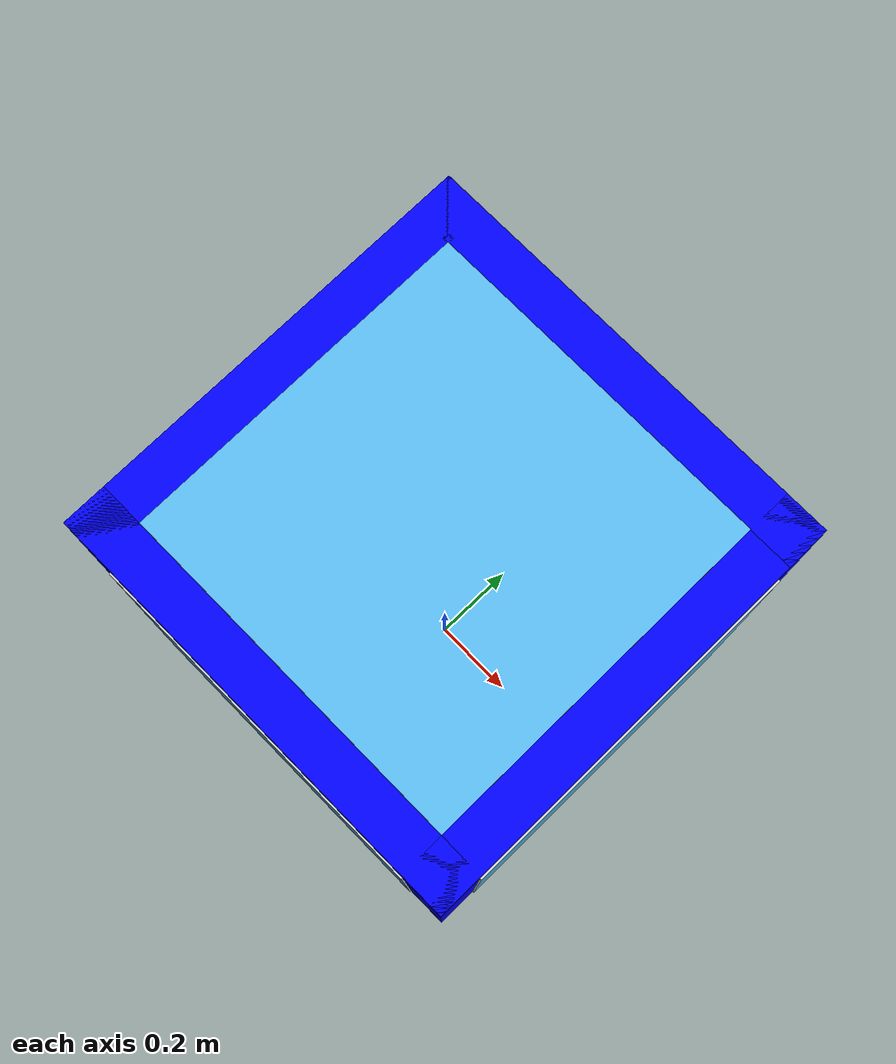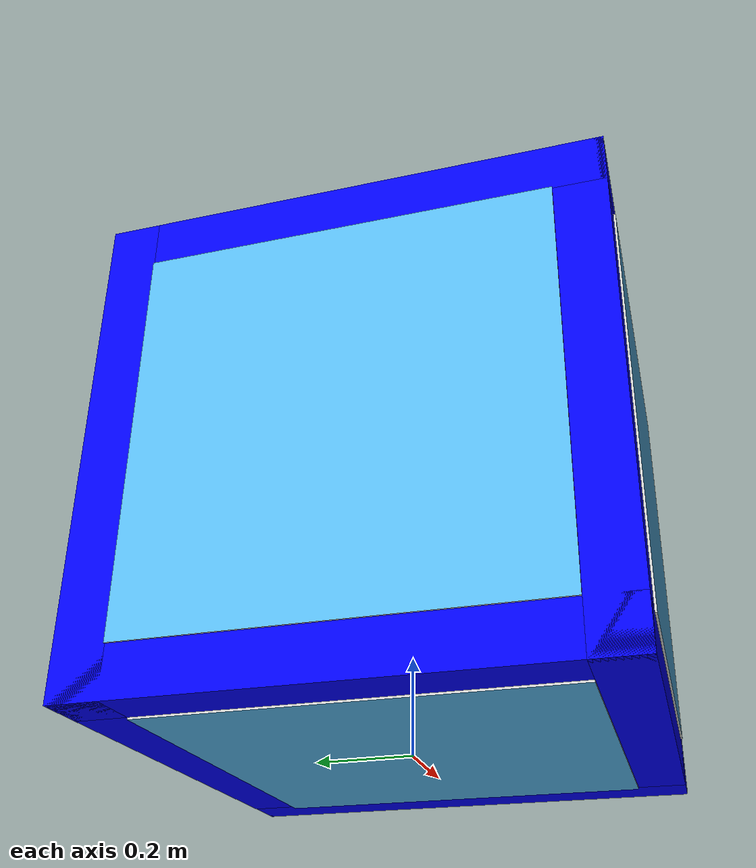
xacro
<?xml version="1.0"?>
<robot xmlns:xacro="http://www.ros.org/wiki/xacro" name="robot">

  <!-- This first link called "my world" is empty -->
  <link name="my world"></link>

  <!-- The base origin is offset from the world origin. -->
  <joint name="base_joint" type="fixed">
    <origin xyz="0 0 0" rpy="0 0 0"/>
    <parent link="my world"/>
    <child link="cube_frame"/>
  </joint>

  <!-- Define properties for cube dimensions -->
  <xacro:property name="cube_length" value="1.0"/>    <!-- Length of the cube -->
  <xacro:property name="cube_girth" value="0.1"/>     <!-- Thickness of the edges -->

  <!-- Center coordinates of the cube -->
  <xacro:property name="cube_x" value="0.0"/>
  <xacro:property name="cube_y" value="0.0"/>
  <xacro:property name="cube_z" value="${cube_length / 2}"/> <!-- Half the cube length -->

  <!-- Define properties for the disk dimensions -->
  <xacro:property name="disk_radius" value="0.3"/>        <!-- Radius of the disk -->
  <xacro:property name="disk_thickness" value="0.1"/>     <!-- Thickness (height) of the disk -->

  <!-- Defining colors -->
  <xacro:property name="red" value="1 0 0 1"/>
  <xacro:property name="yellow" value="1 0.5 0 1"/>
  <xacro:property name="green" value="0 1 0 1"/>

  <xacro:property name="mesh_filename_1" value="$(find aruco_cube)/meshes/face_1.dae"/>
  <xacro:property name="mesh_filename_2" value="$(find aruco_cube)/meshes/face_2.dae"/>
  <xacro:property name="mesh_filename_3" value="$(find aruco_cube)/meshes/face_3.dae"/>
  <xacro:property name="mesh_filename_4" value="$(find aruco_cube)/meshes/face_4.dae"/>
  <xacro:property name="mesh_filename_5" value="$(find aruco_cube)/meshes/face_5.dae"/>
  <xacro:property name="mesh_filename_6" value="$(find aruco_cube)/meshes/face_6.dae"/>
  <xacro:property name="mesh_scale" value="${(cube_length-2*cube_girth)/2}"/>

  <!-- Macro for defining a visual edge -->
  <xacro:macro name="visual_edge" params="edge x y z r p yaw">
    <visual name="${edge}">
      <origin xyz="${x} ${y} ${z}" rpy="${r} ${p} ${yaw}"/>
      <geometry>
        <box size="${cube_girth} ${cube_girth} ${cube_length}"/>
      </geometry>
      <material name="blue">
        <color rgba="0 0 1 1"/> <!-- Blue color with RGBA values -->
      </material>
      <!-- Material and other visual properties can be added here -->
    </visual>
  </xacro:macro>

    <!-- Macro for a visual element with a mesh and origin parameters -->
  <xacro:macro name="visual_mesh" params="name mesh_filename mesh_scale xyz rpy">
    <visual name="${name}">
      <origin xyz="${xyz}" rpy="${rpy}" />
      <geometry>
        <mesh filename="${mesh_filename}" scale="${mesh_scale}"/>
      </geometry>
    </visual>
  </xacro:macro>

  <!-- Macro for defining a disk link-->
  <xacro:macro name="disk_link_macro" params="name xyz rpy radius thickness rgba">
    <link name="${name}">
      <!-- Visual element for the disk -->
      <visual name="disk">
        <origin xyz="${xyz}" rpy="${rpy}"/>
        <geometry>
          <cylinder radius="${radius}" length="${thickness}"/>
        </geometry>
        <material name="color_${rgba}">
          <color rgba="${rgba}"/> <!-- Color with RGBA values -->
        </material>
      </visual>

      <!-- Collision properties for the disk -->
      <collision name="disk_collision">
        <origin xyz="${xyz}" rpy="${rpy}"/>
        <geometry>
          <cylinder radius="${radius}" length="${thickness}"/>
        </geometry>
      </collision>

      <!-- Inertial properties for the disk -->
      <inertial>
        <origin xyz="${xyz}"/>
        <mass value="1.0"/>
        <inertia ixx="0.1" ixy="0.0" ixz="0.0" iyy="0.1" iyz="0.0" izz="0.1"/>
      </inertial>
    </link>
  </xacro:macro>

  <!-- Main robot model -->
  <link name="cube_frame">
    <!-- Visual element for the main cube -->
    <xacro:visual_edge edge="ZXY" x="${(cube_length - cube_girth) / 2}" y="${cube_y+(cube_length - cube_girth) / 2}" z="${cube_z}" r="0" p="0" yaw="0"/>
    <xacro:visual_edge edge="ZX_Y" x="${-(cube_length - cube_girth) / 2}" y="${cube_y+(cube_length - cube_girth) / 2}" z="${cube_z}" r="0" p="0" yaw="0"/>
    <xacro:visual_edge edge="ZXY_" x="${(cube_length - cube_girth) / 2}" y="${cube_y-(cube_length - cube_girth) / 2}" z="${cube_z}" r="0" p="0" yaw="0"/>
    <xacro:visual_edge edge="ZX_Y_" x="${-(cube_length - cube_girth) / 2}" y="${cube_y-(cube_length - cube_girth) / 2}" z="${cube_z}" r="0" p="0" yaw="0"/>

    <xacro:visual_edge edge="XYZ" y="${(cube_length - cube_girth) / 2}" z="${cube_z+(cube_length/2)-(cube_girth/2)}" x="${cube_x}" r="0" p="${pi/2}" yaw="0"/>
    <xacro:visual_edge edge="XY_Z" y="${-(cube_length - cube_girth) / 2}" z="${cube_z+(cube_length/2)-(cube_girth/2)}" x="${cube_x}" r="0" p="${pi/2}" yaw="0"/>
    <xacro:visual_edge edge="XYZ_" y="${(cube_length - cube_girth) / 2}" z="${cube_z-(cube_length/2)+(cube_girth/2)}" x="${cube_x}" r="0" p="${pi/2}" yaw="0"/>
    <xacro:visual_edge edge="XY_Z_" y="${-(cube_length - cube_girth) / 2}" z="${cube_z-(cube_length/2)+(cube_girth/2)}" x="${cube_x}" r="0" p="${pi/2}" yaw="0"/>

    <xacro:visual_edge edge="YZX" z="${cube_z+(cube_length/2)-(cube_girth/2)}" x="${cube_x+(cube_length - cube_girth) / 2}" y="${cube_y}" r="${pi/2}" p="0" yaw="0"/>
    <xacro:visual_edge edge="YZ_X" z="${cube_z-(cube_length/2)+(cube_girth/2)}" x="${cube_x+(cube_length - cube_girth) / 2}" y="${cube_y}" r="${pi/2}" p="0" yaw="0"/>
    <xacro:visual_edge edge="YZX_" z="${cube_z+(cube_length/2)-(cube_girth/2)}" x="${cube_x-(cube_length - cube_girth) / 2}" y="${cube_y}" r="${pi/2}" p="0" yaw="0"/>
    <xacro:visual_edge edge="YZ_X_" z="${cube_z-(cube_length/2)+(cube_girth/2)}" x="${cube_x-(cube_length - cube_girth) / 2}" y="${cube_y}" r="${pi/2}" p="0" yaw="0"/>

    <!-- Aruco Tags on each face -->
     <!-- Use the visual_mesh macro -->
  <xacro:visual_mesh
    name="X"
    mesh_filename="${mesh_filename_1}"
    mesh_scale="${mesh_scale} ${mesh_scale} ${mesh_scale}"
    xyz="${cube_x+cube_length/2} ${cube_y} ${cube_z}"
    rpy="0 ${pi/2} 0"/>
  <xacro:visual_mesh
    name="Y"
    mesh_filename="${mesh_filename_2}"
    mesh_scale="${mesh_scale} ${mesh_scale} ${mesh_scale}"
    xyz="${cube_x} ${cube_y+cube_length/2} ${cube_z}"
    rpy="-${pi/2} 0 0"/>
  <xacro:visual_mesh
    name="Z"
    mesh_filename="${mesh_filename_3}"
    mesh_scale="${mesh_scale} ${mesh_scale} ${mesh_scale}"
    xyz="${cube_x} ${cube_y} ${cube_z+cube_length/2}"
    rpy="0 0 0"/>
  <xacro:visual_mesh
    name="-X"
    mesh_filename="${mesh_filename_4}"
    mesh_scale="${mesh_scale} ${mesh_scale} ${mesh_scale}"
    xyz="${cube_x-cube_length/2} ${cube_y} ${cube_z}"
    rpy="0 -${pi/2} 0"/>
  <xacro:visual_mesh
    name="-Y"
    mesh_filename="${mesh_filename_5}"
    mesh_scale="${mesh_scale} ${mesh_scale} ${mesh_scale}"
    xyz="${cube_x} ${cube_y-cube_length/2} ${cube_z}"
    rpy="${pi/2} 0 0"/>
  <xacro:visual_mesh
    name="-Z"
    mesh_filename="${mesh_filename_6}"
    mesh_scale="${mesh_scale} ${mesh_scale} ${mesh_scale}"
    xyz="${cube_x} ${cube_y} ${cube_z-cube_length/2}"
    rpy="${pi} 0 0"/>

    <!-- Collision properties for the main link -->
    <collision name="collision">
      <origin xyz="${cube_x} ${cube_y} ${cube_z}"/>
      <geometry>
        <box size="${cube_length} ${cube_length} ${cube_length}"/>
      </geometry>
    </collision>

    <!-- Inertial properties -->
    <inertial>
      <origin xyz="${cube_x} ${cube_y} ${cube_z}"/>
      <mass value="1.0"/>
      <inertia ixx="0.1" ixy="0.0" ixz="0.0" iyy="0.1" iyz="0.0" izz="0.1"/>
    </inertial>
  </link>

  <!-- Defining the Three Disks -->
  <xacro:disk_link_macro name="disk_link_X" xyz="0 0 0" rpy="0 ${pi/2} 0" radius="${disk_radius}" thickness="${disk_thickness}" rgba="${red}"/>
  <xacro:disk_link_macro name="disk_link_Y" xyz="0 0 0" rpy="${pi/2} 0 0" radius="${disk_radius}" thickness="${disk_thickness}" rgba="${yellow}"/>
  <xacro:disk_link_macro name="disk_link_Z" xyz="0 0 0" rpy="0 0 0" radius="${disk_radius}" thickness="${disk_thickness}" rgba="${green}"/>

  <!-- Joint between cube_frame and disk_links -->
  <joint name="cube_disk_joint_X" type="continuous">
    <origin xyz="${cube_x+(cube_length/2)-disk_thickness} ${cube_y} ${cube_z}"/>
    <parent link="cube_frame"/>
    <child link="disk_link_X"/>
    <axis xyz="1 0 0"/> <!-- Rotation axis along the x-axis -->
    <limit effort="1000.0" velocity="1000.0"/> <!-- Joint effort and velocity limits -->
  </joint>

  <joint name="cube_disk_joint_Y" type="continuous">
    <origin xyz="${cube_x} ${cube_y+(cube_length/2)-disk_thickness} ${cube_z}"/>
    <parent link="cube_frame"/>
    <child link="disk_link_Y"/>
    <axis xyz="0 1 0"/> <!-- Rotation axis along the y-axis -->
    <limit effort="1000.0" velocity="1000.0"/> <!-- Joint effort and velocity limits -->
  </joint>

  <joint name="cube_disk_joint_Z" type="continuous">
    <origin xyz="${cube_x} ${cube_y} ${cube_z+(cube_length/2)-disk_thickness}"/>
    <parent link="cube_frame"/>
    <child link="disk_link_Z"/>
    <axis xyz="0 0 1"/> <!-- Rotation axis along the z-axis -->
    <limit effort="1000.0" velocity="1000.0"/> <!-- Joint effort and velocity limits -->
  </joint>

  <!-- JointController plugin to control the joint velocity (for cube_disk_joint_X)-->
  <gazebo>
    <plugin filename="libignition-gazebo-joint-controller-system.so"
            name="ignition::gazebo::systems::JointController">
      <joint_name>cube_disk_joint_X</joint_name>
      <topic>cmd_vel_r</topic>
      <!-- PID controller for smooth velocity control -->
      <use_force_commands>true</use_force_commands>
      <p_gain>0.15</p_gain>
    </plugin>

    <!-- JointController plugin to control the joint velocity (for cube_disk_joint_Y)-->
    <plugin filename="libignition-gazebo-joint-controller-system.so"
            name="ignition::gazebo::systems::JointController">
      <joint_name>cube_disk_joint_Y</joint_name>
      <topic>cmd_vel_y</topic>
      <!-- PID controller for smooth velocity control -->
      <use_force_commands>true</use_force_commands>
      <p_gain>0.15</p_gain>
    </plugin>

    <!-- JointController plugin to control the joint velocity (for cube_disk_joint_Z)-->
    <plugin filename="libignition-gazebo-joint-controller-system.so"
            name="ignition::gazebo::systems::JointController">
      <joint_name>cube_disk_joint_Z</joint_name>
      <topic>cmd_vel_g</topic>
      <!-- PID controller for smooth velocity control -->
      <use_force_commands>true</use_force_commands>
      <p_gain>0.15</p_gain>
    </plugin>
  </gazebo>

</robot>
